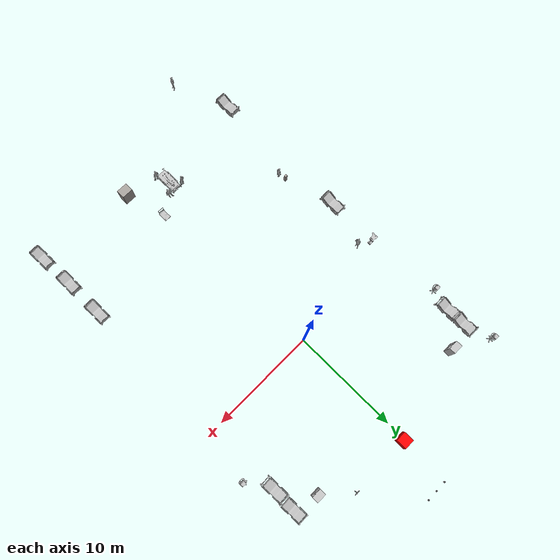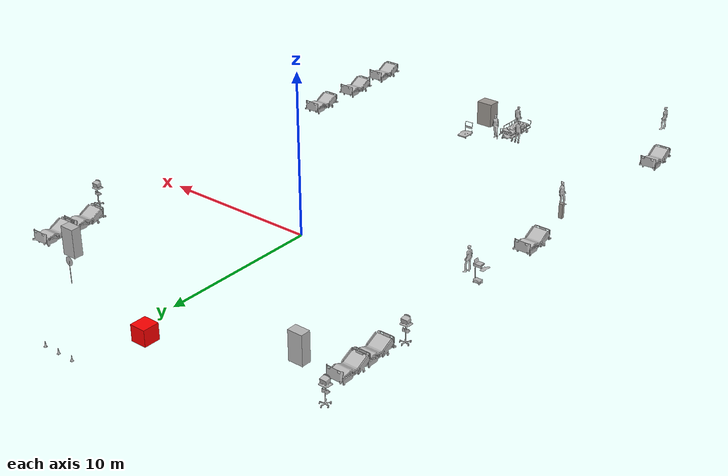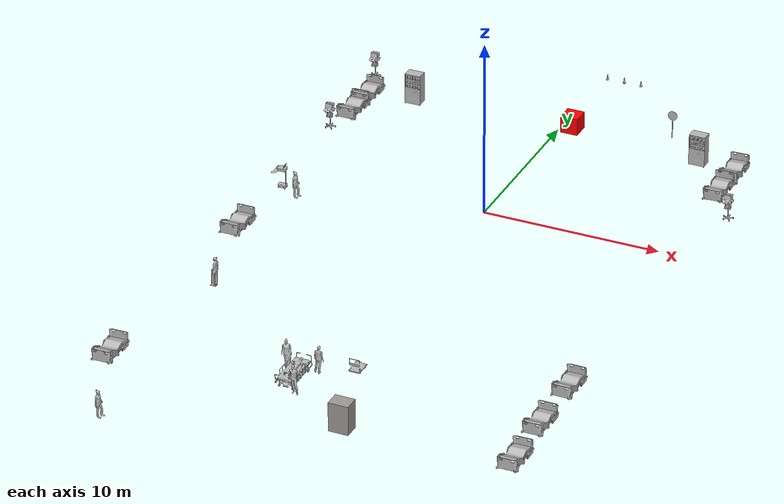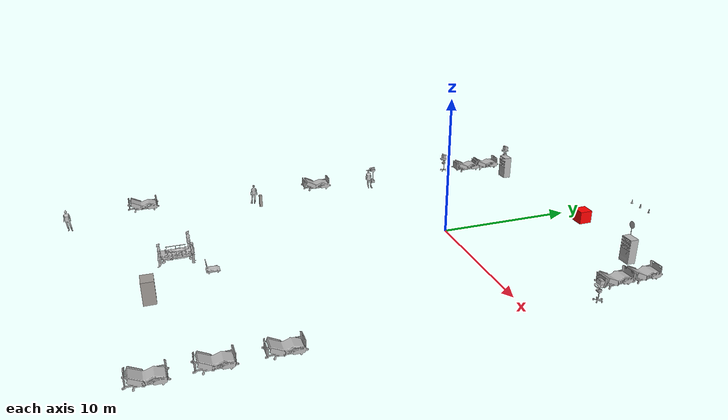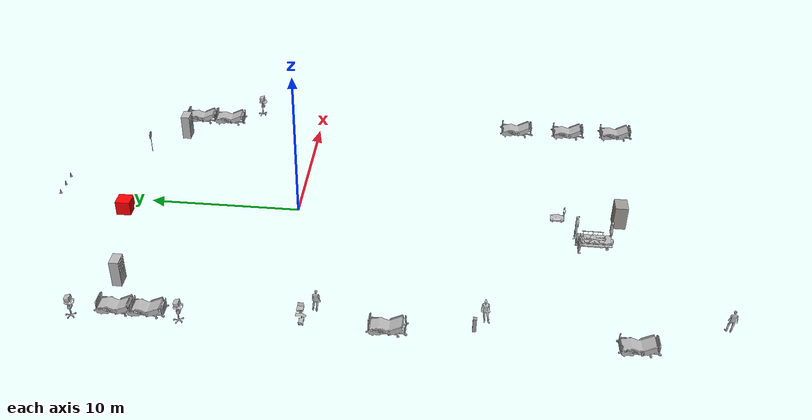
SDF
<sdf version="1.7">
 <world name="default">
  <gravity>0 0 -9.8</gravity>
  <physics default="1" name="default_physics" type="dart">
   <max_step_size>0.001</max_step_size>
   <real_time_update_rate>1000</real_time_update_rate>
  </physics>
  <scene><ambient>0.3 0.3 0.3 1</ambient><background>0.7 0.8 0.9 1</background><shadows>true</shadows></scene>
  <plugin filename="gz-sim-physics-system" name="gz::sim::systems::Physics"/>
  <plugin filename="gz-sim-user-commands-system" name="gz::sim::systems::UserCommands"/>
  <plugin filename="gz-sim-scene-broadcaster-system" name="gz::sim::systems::SceneBroadcaster"/>
  <plugin filename="gz-sim-sensors-system" name="gz::sim::systems::Sensors">
   <render_engine>ogre2</render_engine>
  </plugin>
  <plugin filename="gz-sim-imu-system" name="gz::sim::systems::Imu"/>
  <light type="directional" name="sun">
   <pose>0 0 10 0 0 0</pose>
   <diffuse>1.0 0.95 0.9 1</diffuse>
   <specular>0.3 0.3 0.3 1</specular>
   <attenuation>
    <range>1000</range>
    <constant>0.9</constant>
    <linear>0.01</linear>
    <quadratic>0.001</quadratic>
   </attenuation>
   <direction>-0.5 0.1 -0.9</direction>
  </light>
  <model name="blue_cone_1">
   <include><uri>model://blue_cone</uri><static>true</static><pose>0.2 16.5 0 0 0 0</pose></include>
  </model>
  <model name="green_cone_1">
   <include><uri>model://green_cone</uri><static>true</static><pose>1.2 16.5 0 0 0 0</pose></include>
  </model>
  <model name="red_cone_1">
   <include><uri>model://red_cone</uri><static>true</static><pose>2.2 16.5 0 0 0 0</pose></include>
  </model>
  <model name="goal_line_box">
   <static>true</static>
   <link name="link">
    <visual name="visual">
     <geometry><box><size>1 1 1</size></box></geometry>
     <material>
      <ambient>1 0 0 1</ambient>
      <diffuse>1 0 0 1</diffuse>
      <specular>0.1 0.1 0.1 1</specular>
      <emissive>0 0 0 1</emissive>
     </material>
    </visual>
   </link>
   <pose>0 12 -0.499 0 0 0</pose>
  </model>
  <model name="circle_sign_1">
   <include><uri>model://circle_sign</uri><static>true</static><pose>6.0 11.7 0 0 0 3.14159</pose></include>
  </model>
  <model name="Scrubs_2">
   <include><uri>model://Scrubs</uri><static>true</static><pose>-9.0 -26.5 0.0 0.0 0.0 0.0</pose></include>
  </model>
  <model name="CGMClassic_1">
   <include>
    <uri>model://CGMClassic</uri>
    <static>true</static>
    <pose>11.1777 -18.4129 0 0 0 -3.13719</pose>
   </include>
  </model>
  <model name="CGMClassic_2">
   <include>
    <uri>model://CGMClassic</uri>
    <static>true</static>
    <pose>11.1179 -14.6493 0 0 0 -3.13599</pose>
   </include>
  </model>
  <model name="Scrubs_1">
   <include><uri>model://Scrubs</uri><static>true</static><pose>-9.61916 -12.5112 0 0 0 -3.12353</pose></include>
  </model>
  <model name="CGMClassic_3">
   <include>
    <uri>model://CGMClassic</uri>
    <static>true</static>
    <pose>-11.2304 -21.1134 0 0 0 -3.11834</pose>
   </include>
  </model>
  <model name="CGMClassic_4">
   <include>
    <uri>model://CGMClassic</uri>
    <static>true</static>
    <pose>-11.0878 -7.00992 0 0 -0 3.1351</pose>
   </include>
  </model>
  <model name="CGMClassic_5">
   <include>
    <uri>model://CGMClassic</uri>
    <static>true</static>
    <pose>-11.0106 8.9505 -0.008203 -0.035019 -0.000392 3.13388</pose>
   </include>
  </model>
  <model name="CGMClassic_6">
   <include>
    <uri>model://CGMClassic</uri>
    <static>true</static>
    <pose>-11.025 7.10335 0 -0.035021 1.8e-05 -3.13762</pose>
   </include>
  </model>
  <model name="TrolleyBedPatient_1">
   <include>
    <uri>model://TrolleyBedPatient</uri>
    <static>true</static>
    <pose>-1.83202 -19.2612 0 0 -0 0</pose>
   </include>
  </model>
  <model name="Scrubs_4">
   <include><uri>model://Scrubs</uri><static>true</static><pose>-0.93616 -18.2252 0 0 -0 1.62572</pose></include>
  </model>
  <model name="Scrubs_5">
   <include>
    <uri>model://Scrubs</uri>
    <static>true</static>
    <pose>-2.66657 -18.3733 0 -0.002221 -0.006608 -1.24025</pose>
   </include>
  </model>
  <model name="CGMClassic_7">
   <include>
    <uri>model://CGMClassic</uri>
    <static>true</static>
    <pose>10.6166 9.06291 -0.008203 -0.03501 0.000885 -3.11285</pose>
   </include>
  </model>
  <model name="CGMClassic_8">
   <include>
    <uri>model://CGMClassic</uri>
    <static>true</static>
    <pose>10.6006 6.90956 -0.008203 -0.035003 0.001133 -3.10576</pose>
   </include>
  </model>
  <model name="ParkingTrolleyMin_1">
   <include>
    <uri>model://ParkingTrolleyMin</uri>
    <static>true</static>
    <pose>0.715846 -17.1496 -0.000121 -1e-06 -0 0</pose>
   </include>
  </model>
  <model name="Scrubs_6">
   <include><uri>model://Scrubs</uri><static>true</static><pose>-1.29468 -20.4093 0 0 0 -1.51066</pose></include>
  </model>
  <model name="CGMClassic_9">
   <include>
    <uri>model://CGMClassic</uri>
    <static>true</static>
    <pose>11.3613 -21.8867 0 0 0 -3.12292</pose>
   </include>
  </model>
  <model name="XRayMachine_1">
   <include><uri>model://XRayMachine</uri><static>true</static><pose>1.79424 -21.3329 0 0 -0 0</pose></include>
  </model>
  <model name="BloodPressureMonitor_1">
   <include>
    <uri>model://BloodPressureMonitor</uri>
    <static>true</static>
    <pose>-9.96258 -11.9361 0 0 -0 0</pose>
   </include>
  </model>
  <model name="BMWCart_1">
   <include><uri>model://BMWCart</uri><static>true</static><pose>-10.931 -1.9483 0 0 -0 0</pose></include>
  </model>
  <model name="Scrubs_7">
   <include><uri>model://Scrubs</uri><static>true</static><pose>-9.75875 -2.67552 0 0 -0 0</pose></include>
  </model>
  <model name="BPCart_2">
   <include><uri>model://BPCart</uri><static>true</static><pose>12.0072 4.64765 0 0 -0 0</pose></include>
  </model>
  <model name="BPCart_3">
   <include><uri>model://BPCart</uri><static>true</static><pose>-11.7236 11.4294 0 0 -0 0</pose></include>
  </model>
  <model name="BPCart_4">
   <include>
    <uri>model://BPCart</uri>
    <static>true</static>
    <pose>-11.4703 5.05999 0.003446 1e-06 -0 0.003096</pose>
   </include>
  </model>
  <model name="VendingMachine_1">
   <include>
    <uri>model://VendingMachine</uri>
    <static>true</static>
    <pose>-8.45694 9.63064 0 0 -0 0</pose>
   </include>
  </model>
  <model name="VendingMachine_2">
   <include>
    <uri>model://VendingMachine</uri>
    <static>true</static>
    <pose>8.35378 9.64852 -3e-06 -6e-06 0 0</pose>
   </include>
  </model>
 </world>
</sdf>

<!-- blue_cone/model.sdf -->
<sdf version="1.5">
  <model name="blue Cone">
    <link name="link">
      <collision name="collision">
        <geometry>
          <mesh>
            <scale>3 3 3</scale>
            <uri>model://blue_cone/meshes/model.dae</uri>
          </mesh>
        </geometry>
      </collision>
      <visual name="visual">
        <geometry>
          <mesh>
            <scale>3 3 3</scale>
            <uri>model://blue_cone/meshes/model.dae</uri>
          </mesh>
        </geometry>
      </visual>
    </link>
  </model>
</sdf>

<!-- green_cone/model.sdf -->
<sdf version="1.5">
  <model name="green Cone">
    <link name="link">
      <collision name="collision">
        <geometry>
          <mesh>
            <scale>3 3 3</scale>
            <uri>model://green_cone/meshes/model.dae</uri>
          </mesh>
        </geometry>
      </collision>
      <visual name="visual">
        <geometry>
          <mesh>
            <scale>3 3 3</scale>
            <uri>model://green_cone/meshes/model.dae</uri>
          </mesh>
        </geometry>
      </visual>
    </link>
  </model>
</sdf>

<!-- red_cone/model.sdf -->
<sdf version="1.7">
  <model name="red Cone">
    <link name="link">
      <collision name="collision">
        <geometry>
          <mesh>
            <scale>3 3 3</scale>
            <uri>model://red_cone/meshes/model.dae</uri>
          </mesh>
        </geometry>
      </collision>
      <visual name="visual">
        <geometry>
          <mesh>
            <scale>3 3 3</scale>
            <uri>model://red_cone/meshes/model.dae</uri>
          </mesh>
        </geometry>
      </visual>
    </link>
  </model>
</sdf>

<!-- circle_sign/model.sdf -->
<sdf version="1.5">
  <model name="circle_sign">
    <static>true</static>
    <link name="link">
      <collision name="collision">
        <geometry>
          <mesh>
            <scale>7 7 7</scale>
            <uri>model://circle_sign/meshes/model.dae</uri>
          </mesh>
        </geometry>
      </collision>
      <visual name="visual">
        <geometry>
          <mesh>
            <scale>7 7 7</scale>
            <uri>model://circle_sign/meshes/model.dae</uri>
          </mesh>
        </geometry>
      </visual>
    </link>
  </model>
</sdf>

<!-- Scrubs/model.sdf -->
<sdf version="1.6">
  <model name='Scrubs'>
   <static>true</static>
    <link name="body">
      <pose>0 0 0 0 0 0</pose>

      <visual name="visual">
        <geometry>
          <mesh>
            <uri>model://Scrubs/meshes/scrubs.obj</uri>
          </mesh>
        </geometry>
      </visual>

      <collision name="collision">
        <geometry>
          <mesh>
            <uri>model://Scrubs/meshes/Scrubs_Col.obj</uri>
          </mesh>
        </geometry>
      </collision>

    </link>
  </model>
</sdf>

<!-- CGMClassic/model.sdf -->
<sdf version="1.6">
  <model name="CGMClassic">
   <static>true</static>
    <link name="body">
      <pose>0 0 0 0 0 0</pose>

      <visual name="visual">
        <geometry>
          <mesh>
            <uri>model://CGMClassic/meshes/CGMClassic.obj</uri>
            <scale>0.01 0.01 0.01</scale>
          </mesh>
        </geometry>
      </visual>

      <collision name="collision">
        <geometry>
          <mesh>
            <uri>model://CGMClassic/meshes/CGMClassic.obj</uri>
            <scale>0.01 0.01 0.01</scale>
          </mesh>
        </geometry>
      </collision>

    </link>
  </model>
</sdf>

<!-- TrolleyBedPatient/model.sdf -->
<sdf version="1.6">
  <model name="TrolleyBedPatient">
   <static>true</static>
    <link name="body">
      <pose>0 0 0 0 0 0</pose>

      <visual name="visual">
        <geometry>
          <mesh>
            <uri>model://TrolleyBedPatient/meshes/TrolleyBedPatient.obj</uri>
          </mesh>
        </geometry>
      </visual>

      <collision name="collision">
        <geometry>
          <mesh>
            <uri>model://TrolleyBedPatient/meshes/TrolleyBedPatient.obj</uri>
          </mesh>
        </geometry>
      </collision>

    </link>
  </model>
</sdf>

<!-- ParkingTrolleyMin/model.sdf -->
<sdf version="1.6">
  <model name="ParkingTrolleyMin">
    <link name="body">
      <pose>0 0 0 0 0 0</pose>

        <visual name="visual">
          <pose>0 0 0 0 0 0</pose>
          <geometry>
            <mesh><uri>model://ParkingTrolleyMin/meshes/trolleymin.obj</uri></mesh>
          </geometry>
        </visual>

        <collision name="collision">
          <pose>0 0 0 0 0 0</pose>
          <geometry>
            <mesh><uri>model://ParkingTrolleyMin/meshes/trolleymin.obj</uri></mesh>
          </geometry>
        </collision>

    </link>
  </model>
</sdf>

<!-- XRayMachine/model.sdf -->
<sdf version="1.6">
  <model name="XRayMachine">
    <static>true</static>
    <link name="link">
      <collision name="col">
        <geometry>
          <box>
            <size>1.1 0.85 1.65</size>
          </box>
        </geometry>
      </collision>
      <visual name="vis">
        <geometry>
          <box>
            <size>1.1 0.85 1.65</size>
          </box>
        </geometry>
        <material>
          <ambient>0.62 0.6 0.58 1</ambient>
          <diffuse>0.62 0.6 0.58 1</diffuse>
        </material>
      </visual>
    </link>
  </model>
</sdf>

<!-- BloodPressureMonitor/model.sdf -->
<sdf version="1.6">
  <model name="BloodPressureMonitor">
    <static>true</static>
    <link name="link">
      <collision name="col">
        <geometry>
          <box>
            <size>0.25 0.22 0.95</size>
          </box>
        </geometry>
      </collision>
      <visual name="vis">
        <geometry>
          <box>
            <size>0.25 0.22 0.95</size>
          </box>
        </geometry>
        <material>
          <ambient>0.62 0.6 0.58 1</ambient>
          <diffuse>0.62 0.6 0.58 1</diffuse>
        </material>
      </visual>
    </link>
  </model>
</sdf>

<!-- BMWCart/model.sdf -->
<sdf version="1.6">
  <model name='BMWCart'>
    <link name="body">
      <pose>0 0 0 0 0 0</pose>

      <visual name="visual">
        <geometry>
          <mesh>
            <uri>model://BMWCart/meshes/Cart_BMW.obj</uri>
          </mesh>
        </geometry>
      </visual>

      <collision name="collision">
        <geometry>
          <mesh>
            <uri>model://BMWCart/meshes/Cart_BMW_Col.obj</uri>
          </mesh>
        </geometry>
      </collision>

    </link>
  </model>
</sdf>

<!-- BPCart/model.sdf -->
<sdf version="1.6">
  <model name='BPCart'>
    <link name="body">
      <pose>0 0 0 0 0 0</pose>

      <visual name="visual">
        <geometry>
          <mesh>
            <uri>model://BPCart/meshes/Cart_BP.obj</uri>
          </mesh>
        </geometry>
      </visual>

      <collision name="collision">
        <geometry>
          <mesh>
            <uri>model://BPCart/meshes/Cart_BP_Col.obj</uri>
          </mesh>
        </geometry>
      </collision>

    </link>
  </model>
</sdf>

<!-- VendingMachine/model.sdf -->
<sdf version="1.6">
  <model name="VendingMachine">
    <link name="body">
      <pose>0 0 0 0 0 0</pose>

      <visual name="visual">
        <geometry>
          <mesh>
            <uri>model://VendingMachine/meshes/vend.obj</uri>
          </mesh>
        </geometry>
      </visual>

      <collision name="collision">
        <geometry>
          <mesh>
            <uri>model://VendingMachine/meshes/vend.obj</uri>
          </mesh>
        </geometry>
      </collision>

    </link>
  </model>
</sdf>
